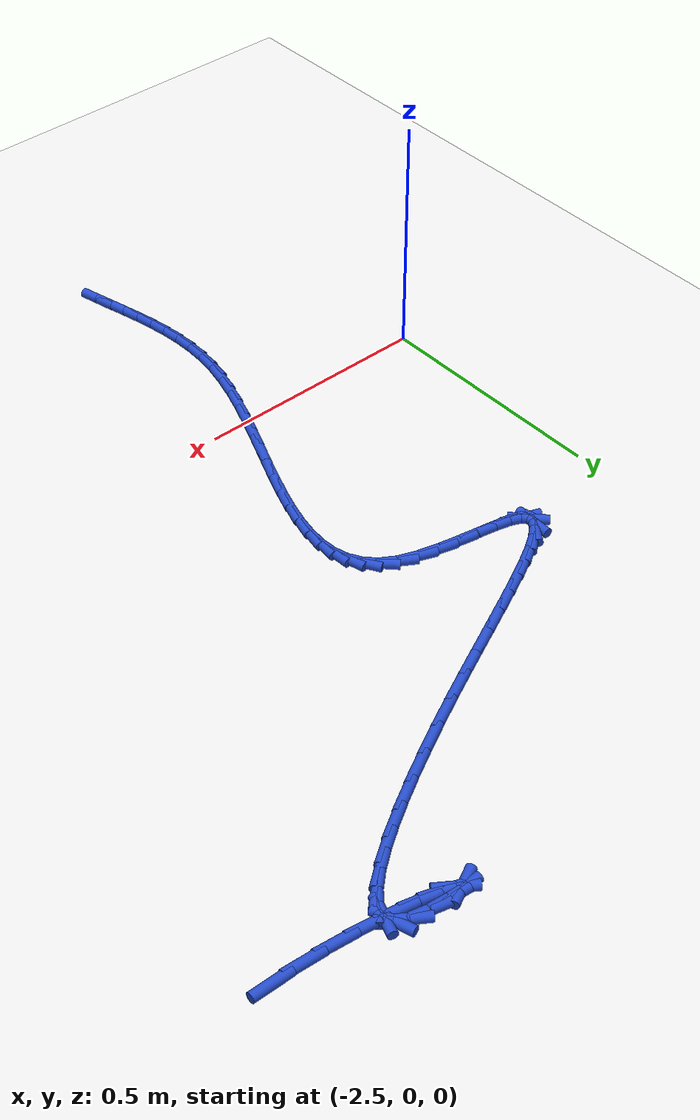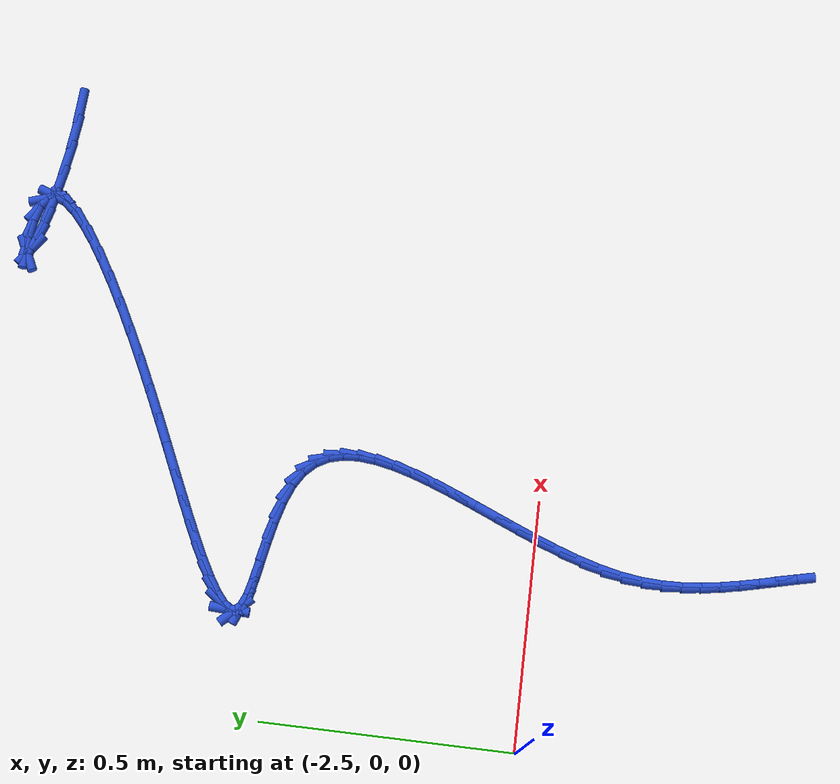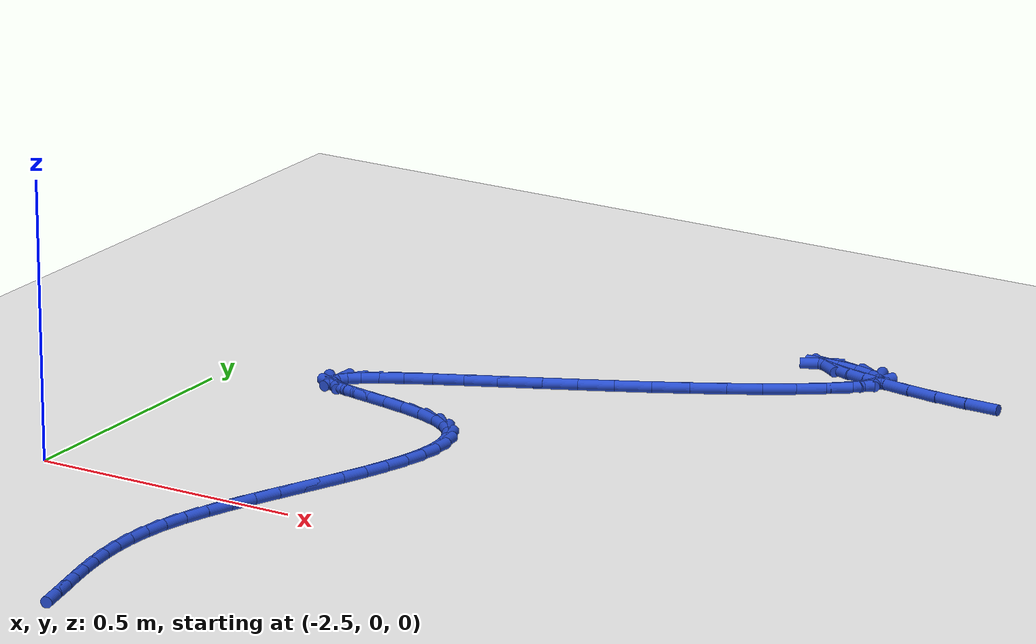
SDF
<sdf version="1.6">
 <world name="default">
  <model name="ground_plane">
   <static>1</static>
   <link name="link">
    <collision name="collision">
     <geometry><plane><normal>0 0 1</normal><size>100 100</size></plane></geometry>
     <surface><friction><ode><mu>100</mu><mu2>50</mu2></ode></friction></surface>
    </collision>
    <visual name="visual">
     <cast_shadows>0</cast_shadows>
     <geometry><plane><normal>0 0 1</normal><size>100 100</size></plane></geometry>
     <material>
      <script><uri>file://media/materials/scripts/gazebo.material</uri><name>Gazebo/WhiteGlow</name></script>
     </material>
    </visual>
   </link>
  </model>
  <model name="line">
   <link name="link_54">
    <pose>-1.2621086770110108 1.0595913020166778 0.01 0 1.57 -0.03310570998613322</pose>
    <collision name="collision">
     <geometry><cylinder><radius>0.01</radius><length>0.08</length></cylinder></geometry>
    </collision>
    <visual name="visual">
     <material>
      <script><name>Gazebo/Blue</name><uri>file://media/materials/scripts/gazebo.material</uri></script>
     </material>
     <geometry><cylinder><radius>0.01</radius><length>0.08</length></cylinder></geometry>
    </visual>
   </link>
   <link name="link_55">
    <pose>-1.3237225197284512 1.0616318175394845 0.01 0 1.57 -0.08320481173974842</pose>
    <collision name="collision">
     <geometry><cylinder><radius>0.01</radius><length>0.08</length></cylinder></geometry>
    </collision>
    <visual name="visual">
     <material>
      <script><name>Gazebo/Blue</name><uri>file://media/materials/scripts/gazebo.material</uri></script>
     </material>
     <geometry><cylinder><radius>0.01</radius><length>0.08</length></cylinder></geometry>
    </visual>
   </link>
   <link name="link_56">
    <pose>-1.3842081927248475 1.0666761626858443 0.01 0 1.57 -0.1258533491783362</pose>
    <collision name="collision">
     <geometry><cylinder><radius>0.01</radius><length>0.08</length></cylinder></geometry>
    </collision>
    <visual name="visual">
     <material>
      <script><name>Gazebo/Blue</name><uri>file://media/materials/scripts/gazebo.material</uri></script>
     </material>
     <geometry><cylinder><radius>0.01</radius><length>0.08</length></cylinder></geometry>
    </visual>
   </link>
   <link name="link_57">
    <pose>-1.4414329532460368 1.0739163568484489 0.01 0 1.57 -0.16495241027521698</pose>
    <collision name="collision">
     <geometry><cylinder><radius>0.01</radius><length>0.08</length></cylinder></geometry>
    </collision>
    <visual name="visual">
     <material>
      <script><name>Gazebo/Blue</name><uri>file://media/materials/scripts/gazebo.material</uri></script>
     </material>
     <geometry><cylinder><radius>0.01</radius><length>0.08</length></cylinder></geometry>
    </visual>
   </link>
   <link name="link_58">
    <pose>-1.4932640585378585 1.0825444194199902 0.01 0 1.57 -0.20491517443810128</pose>
    <collision name="collision">
     <geometry><cylinder><radius>0.01</radius><length>0.08</length></cylinder></geometry>
    </collision>
    <visual name="visual">
     <material>
      <script><name>Gazebo/Blue</name><uri>file://media/materials/scripts/gazebo.material</uri></script>
     </material>
     <geometry><cylinder><radius>0.01</radius><length>0.08</length></cylinder></geometry>
    </visual>
   </link>
   <link name="link_59">
    <pose>-1.5375687658461508 1.0917523697931601 0.01 0 1.57 -0.2536111768307435</pose>
    <collision name="collision">
     <geometry><cylinder><radius>0.01</radius><length>0.08</length></cylinder></geometry>
    </collision>
    <visual name="visual">
     <material>
      <script><name>Gazebo/Blue</name><uri>file://media/materials/scripts/gazebo.material</uri></script>
     </material>
     <geometry><cylinder><radius>0.01</radius><length>0.08</length></cylinder></geometry>
    </visual>
   </link>
   <link name="link_60">
    <pose>-1.5722143324167532 1.1007322273606517 0.01 0 1.57 -0.33452904336762457</pose>
    <collision name="collision">
     <geometry><cylinder><radius>0.01</radius><length>0.08</length></cylinder></geometry>
    </collision>
    <visual name="visual">
     <material>
      <script><name>Gazebo/Blue</name><uri>file://media/materials/scripts/gazebo.material</uri></script>
     </material>
     <geometry><cylinder><radius>0.01</radius><length>0.08</length></cylinder></geometry>
    </visual>
   </link>
   <link name="link_61">
    <pose>-1.5950680154955037 1.1086760115151562 0.01 0 1.57 -0.5993156591058151</pose>
    <collision name="collision">
     <geometry><cylinder><radius>0.01</radius><length>0.08</length></cylinder></geometry>
    </collision>
    <visual name="visual">
     <material>
      <script><name>Gazebo/Blue</name><uri>file://media/materials/scripts/gazebo.material</uri></script>
     </material>
     <geometry><cylinder><radius>0.01</radius><length>0.08</length></cylinder></geometry>
    </visual>
   </link>
   <link name="link_62">
    <pose>-1.6039970723282413 1.114775741649366 0.01 0 1.57 0.45049219160449977</pose>
    <collision name="collision">
     <geometry><cylinder><radius>0.01</radius><length>0.08</length></cylinder></geometry>
    </collision>
    <visual name="visual">
     <material>
      <script><name>Gazebo/Blue</name><uri>file://media/materials/scripts/gazebo.material</uri></script>
     </material>
     <geometry><cylinder><radius>0.01</radius><length>0.08</length></cylinder></geometry>
    </visual>
   </link>
   <link name="link_63">
    <pose>-1.596868760160805 1.1182234371559736 0.01 0 1.57 -0.00045436109669818274</pose>
    <collision name="collision">
     <geometry><cylinder><radius>0.01</radius><length>0.08</length></cylinder></geometry>
    </collision>
    <visual name="visual">
     <material>
      <script><name>Gazebo/Blue</name><uri>file://media/materials/scripts/gazebo.material</uri></script>
     </material>
     <geometry><cylinder><radius>0.01</radius><length>0.08</length></cylinder></geometry>
    </visual>
   </link>
   <link name="link_64">
    <pose>-1.5715867153292318 1.1182119499775667 0.01 0 1.57 -0.10538714081509594</pose>
    <collision name="collision">
     <geometry><cylinder><radius>0.01</radius><length>0.08</length></cylinder></geometry>
    </collision>
    <visual name="visual">
     <material>
      <script><name>Gazebo/Blue</name><uri>file://media/materials/scripts/gazebo.material</uri></script>
     </material>
     <geometry><cylinder><radius>0.01</radius><length>0.08</length></cylinder></geometry>
    </visual>
   </link>
   <link name="link_65">
    <pose>-1.5325511916757233 1.1140828097229545 0.01 0 1.57 -0.24223994316319153</pose>
    <collision name="collision">
     <geometry><cylinder><radius>0.01</radius><length>0.08</length></cylinder></geometry>
    </collision>
    <visual name="visual">
     <material>
      <script><name>Gazebo/Blue</name><uri>file://media/materials/scripts/gazebo.material</uri></script>
     </material>
     <geometry><cylinder><radius>0.01</radius><length>0.08</length></cylinder></geometry>
    </visual>
   </link>
   <link name="link_66">
    <pose>-1.4978407646117895 1.1055061376246496 0.01 0 1.57 -0.5826988297386786</pose>
    <collision name="collision">
     <geometry><cylinder><radius>0.01</radius><length>0.08</length></cylinder></geometry>
    </collision>
    <visual name="visual">
     <material>
      <script><name>Gazebo/Blue</name><uri>file://media/materials/scripts/gazebo.material</uri></script>
     </material>
     <geometry><cylinder><radius>0.01</radius><length>0.08</length></cylinder></geometry>
    </visual>
   </link>
   <link name="link_67">
    <pose>-1.4781532363193755 1.0925314150318177 0.01 0 1.57 -1.2628715336598104</pose>
    <collision name="collision">
     <geometry><cylinder><radius>0.01</radius><length>0.08</length></cylinder></geometry>
    </collision>
    <visual name="visual">
     <material>
      <script><name>Gazebo/Blue</name><uri>file://media/materials/scripts/gazebo.material</uri></script>
     </material>
     <geometry><cylinder><radius>0.01</radius><length>0.08</length></cylinder></geometry>
    </visual>
   </link>
   <link name="link_68">
    <pose>-1.4727773109878248 1.0756281623570447 0.01 0 1.57 1.2169457573293934</pose>
    <collision name="collision">
     <geometry><cylinder><radius>0.01</radius><length>0.08</length></cylinder></geometry>
    </collision>
    <visual name="visual">
     <material>
      <script><name>Gazebo/Blue</name><uri>file://media/materials/scripts/gazebo.material</uri></script>
     </material>
     <geometry><cylinder><radius>0.01</radius><length>0.08</length></cylinder></geometry>
    </visual>
   </link>
   <link name="link_69">
    <pose>-1.480289409153508 1.0552921235547483 0.01 0 1.57 0.8867438918955234</pose>
    <collision name="collision">
     <geometry><cylinder><radius>0.01</radius><length>0.08</length></cylinder></geometry>
    </collision>
    <visual name="visual">
     <material>
      <script><name>Gazebo/Blue</name><uri>file://media/materials/scripts/gazebo.material</uri></script>
     </material>
     <geometry><cylinder><radius>0.01</radius><length>0.08</length></cylinder></geometry>
    </visual>
   </link>
   <link name="link_70">
    <pose>-1.4992659513527973 1.0320190425793483 0.01 0 1.57 0.7251219211130178</pose>
    <collision name="collision">
     <geometry><cylinder><radius>0.01</radius><length>0.08</length></cylinder></geometry>
    </collision>
    <visual name="visual">
     <material>
      <script><name>Gazebo/Blue</name><uri>file://media/materials/scripts/gazebo.material</uri></script>
     </material>
     <geometry><cylinder><radius>0.01</radius><length>0.08</length></cylinder></geometry>
    </visual>
   </link>
   <link name="link_71">
    <pose>-1.5282833581220614 1.0063046633852615 0.01 0 1.57 0.6338047884958683</pose>
    <collision name="collision">
     <geometry><cylinder><radius>0.01</radius><length>0.08</length></cylinder></geometry>
    </collision>
    <visual name="visual">
     <material>
      <script><name>Gazebo/Blue</name><uri>file://media/materials/scripts/gazebo.material</uri></script>
     </material>
     <geometry><cylinder><radius>0.01</radius><length>0.08</length></cylinder></geometry>
    </visual>
   </link>
   <link name="link_72">
    <pose>-1.5659180499976721 0.9786447299269071 0.01 0 1.57 0.5759247933292906</pose>
    <collision name="collision">
     <geometry><cylinder><radius>0.01</radius><length>0.08</length></cylinder></geometry>
    </collision>
    <visual name="visual">
     <material>
      <script><name>Gazebo/Blue</name><uri>file://media/materials/scripts/gazebo.material</uri></script>
     </material>
     <geometry><cylinder><radius>0.01</radius><length>0.08</length></cylinder></geometry>
    </visual>
   </link>
   <link name="link_73">
    <pose>-1.6107464475159996 0.9495349861587024 0.01 0 1.57 0.5361171110174496</pose>
    <collision name="collision">
     <geometry><cylinder><radius>0.01</radius><length>0.08</length></cylinder></geometry>
    </collision>
    <visual name="visual">
     <material>
      <script><name>Gazebo/Blue</name><uri>file://media/materials/scripts/gazebo.material</uri></script>
     </material>
     <geometry><cylinder><radius>0.01</radius><length>0.08</length></cylinder></geometry>
    </visual>
   </link>
   <link name="link_74">
    <pose>-1.6613449712134147 0.919471176035067 0.01 0 1.57 0.5070580799081065</pose>
    <collision name="collision">
     <geometry><cylinder><radius>0.01</radius><length>0.08</length></cylinder></geometry>
    </collision>
    <visual name="visual">
     <material>
      <script><name>Gazebo/Blue</name><uri>file://media/materials/scripts/gazebo.material</uri></script>
     </material>
     <geometry><cylinder><radius>0.01</radius><length>0.08</length></cylinder></geometry>
    </visual>
   </link>
   <link name="link_75">
    <pose>-1.716290041626288 0.8889490435104186 0.01 0 1.57 0.4848547123283656</pose>
    <collision name="collision">
     <geometry><cylinder><radius>0.01</radius><length>0.08</length></cylinder></geometry>
    </collision>
    <visual name="visual">
     <material>
      <script><name>Gazebo/Blue</name><uri>file://media/materials/scripts/gazebo.material</uri></script>
     </material>
     <geometry><cylinder><radius>0.01</radius><length>0.08</length></cylinder></geometry>
    </visual>
   </link>
   <link name="link_76">
    <pose>-1.774158079290991 0.8584643325391752 0.01 0 1.57 0.4672502462934384</pose>
    <collision name="collision">
     <geometry><cylinder><radius>0.01</radius><length>0.08</length></cylinder></geometry>
    </collision>
    <visual name="visual">
     <material>
      <script><name>Gazebo/Blue</name><uri>file://media/materials/scripts/gazebo.material</uri></script>
     </material>
     <geometry><cylinder><radius>0.01</radius><length>0.08</length></cylinder></geometry>
    </visual>
   </link>
   <link name="link_77">
    <pose>-1.8335255047438936 0.8285127870757562 0.01 0 1.57 0.4529797296420567</pose>
    <collision name="collision">
     <geometry><cylinder><radius>0.01</radius><length>0.08</length></cylinder></geometry>
    </collision>
    <visual name="visual">
     <material>
      <script><name>Gazebo/Blue</name><uri>file://media/materials/scripts/gazebo.material</uri></script>
     </material>
     <geometry><cylinder><radius>0.01</radius><length>0.08</length></cylinder></geometry>
    </visual>
   </link>
   <link name="link_78">
    <pose>-1.8930017533487251 0.7995635914094978 0.01 0 1.57 0.4426449568052987</pose>
    <collision name="collision">
     <geometry><cylinder><radius>0.01</radius><length>0.08</length></cylinder></geometry>
    </collision>
    <visual name="visual">
     <material>
      <script><name>Gazebo/Blue</name><uri>file://media/materials/scripts/gazebo.material</uri></script>
     </material>
     <geometry><cylinder><radius>0.01</radius><length>0.08</length></cylinder></geometry>
    </visual>
   </link>
   <link name="link_79">
    <pose>-1.9515214133271221 0.7718243518753135 0.01 0 1.57 0.4368961481491594</pose>
    <collision name="collision">
     <geometry><cylinder><radius>0.01</radius><length>0.08</length></cylinder></geometry>
    </collision>
    <visual name="visual">
     <material>
      <script><name>Gazebo/Blue</name><uri>file://media/materials/scripts/gazebo.material</uri></script>
     </material>
     <geometry><cylinder><radius>0.01</radius><length>0.08</length></cylinder></geometry>
    </visual>
   </link>
   <link name="link_80">
    <pose>-2.0082039907340667 0.7453539126877589 0.01 0 1.57 0.43601604499487856</pose>
    <collision name="collision">
     <geometry><cylinder><radius>0.01</radius><length>0.08</length></cylinder></geometry>
    </collision>
    <visual name="visual">
     <material>
      <script><name>Gazebo/Blue</name><uri>file://media/materials/scripts/gazebo.material</uri></script>
     </material>
     <geometry><cylinder><radius>0.01</radius><length>0.08</length></cylinder></geometry>
    </visual>
   </link>
   <link name="link_81">
    <pose>-2.062171127285192 0.720209399971786 0.01 0 1.57 0.4407581861228284</pose>
    <collision name="collision">
     <geometry><cylinder><radius>0.01</radius><length>0.08</length></cylinder></geometry>
    </collision>
    <visual name="visual">
     <material>
      <script><name>Gazebo/Blue</name><uri>file://media/materials/scripts/gazebo.material</uri></script>
     </material>
     <geometry><cylinder><radius>0.01</radius><length>0.08</length></cylinder></geometry>
    </visual>
   </link>
   <link name="link_82">
    <pose>-2.11254446469613 0.6964479398523468 0.01 0 1.57 0.45261951568819364</pose>
    <collision name="collision">
     <geometry><cylinder><radius>0.01</radius><length>0.08</length></cylinder></geometry>
    </collision>
    <visual name="visual">
     <material>
      <script><name>Gazebo/Blue</name><uri>file://media/materials/scripts/gazebo.material</uri></script>
     </material>
     <geometry><cylinder><radius>0.01</radius><length>0.08</length></cylinder></geometry>
    </visual>
   </link>
   <link name="link_83">
    <pose>-2.158445644682515 0.6741266584543946 0.01 0 1.57 0.474412810399847</pose>
    <collision name="collision">
     <geometry><cylinder><radius>0.01</radius><length>0.08</length></cylinder></geometry>
    </collision>
    <visual name="visual">
     <material>
      <script><name>Gazebo/Blue</name><uri>file://media/materials/scripts/gazebo.material</uri></script>
     </material>
     <geometry><cylinder><radius>0.01</radius><length>0.08</length></cylinder></geometry>
    </visual>
   </link>
   <link name="link_84">
    <pose>-2.1989963089599773 0.6533026819028814 0.01 0 1.57 0.5115820928979206</pose>
    <collision name="collision">
     <geometry><cylinder><radius>0.01</radius><length>0.08</length></cylinder></geometry>
    </collision>
    <visual name="visual">
     <material>
      <script><name>Gazebo/Blue</name><uri>file://media/materials/scripts/gazebo.material</uri></script>
     </material>
     <geometry><cylinder><radius>0.01</radius><length>0.08</length></cylinder></geometry>
    </visual>
   </link>
   <link name="link_85">
    <pose>-2.233318099244151 0.6340331363227594 0.01 0 1.57 0.5755617705309598</pose>
    <collision name="collision">
     <geometry><cylinder><radius>0.01</radius><length>0.08</length></cylinder></geometry>
    </collision>
    <visual name="visual">
     <material>
      <script><name>Gazebo/Blue</name><uri>file://media/materials/scripts/gazebo.material</uri></script>
     </material>
     <geometry><cylinder><radius>0.01</radius><length>0.08</length></cylinder></geometry>
    </visual>
   </link>
   <link name="link_86">
    <pose>-2.2605326572506685 0.6163751478389815 0.01 0 1.57 0.6936682105934229</pose>
    <collision name="collision">
     <geometry><cylinder><radius>0.01</radius><length>0.08</length></cylinder></geometry>
    </collision>
    <visual name="visual">
     <material>
      <script><name>Gazebo/Blue</name><uri>file://media/materials/scripts/gazebo.material</uri></script>
     </material>
     <geometry><cylinder><radius>0.01</radius><length>0.08</length></cylinder></geometry>
    </visual>
   </link>
   <link name="link_87">
    <pose>-2.2797616246951615 0.6003858425765 0.01 0 1.57 0.9423868441744991</pose>
    <collision name="collision">
     <geometry><cylinder><radius>0.01</radius><length>0.08</length></cylinder></geometry>
    </collision>
    <visual name="visual">
     <material>
      <script><name>Gazebo/Blue</name><uri>file://media/materials/scripts/gazebo.material</uri></script>
     </material>
     <geometry><cylinder><radius>0.01</radius><length>0.08</length></cylinder></geometry>
    </visual>
   </link>
   <link name="link_88">
    <pose>-2.290126643293265 0.5861223466602673 0.01 0 1.57 1.5209431570071748</pose>
    <collision name="collision">
     <geometry><cylinder><radius>0.01</radius><length>0.08</length></cylinder></geometry>
    </collision>
    <visual name="visual">
     <material>
      <script><name>Gazebo/Blue</name><uri>file://media/materials/scripts/gazebo.material</uri></script>
     </material>
     <geometry><cylinder><radius>0.01</radius><length>0.08</length></cylinder></geometry>
    </visual>
   </link>
   <link name="link_89">
    <pose>-2.2907493547606097 0.5736417862152358 0.01 0 1.57 -0.8165214953865673</pose>
    <collision name="collision">
     <geometry><cylinder><radius>0.01</radius><length>0.08</length></cylinder></geometry>
    </collision>
    <visual name="visual">
     <material>
      <script><name>Gazebo/Blue</name><uri>file://media/materials/scripts/gazebo.material</uri></script>
     </material>
     <geometry><cylinder><radius>0.01</radius><length>0.08</length></cylinder></geometry>
    </visual>
   </link>
   <link name="link_90">
    <pose>-2.2807514008128287 0.5630012873663579 0.01 0 1.57 -0.39126328102824415</pose>
    <collision name="collision">
     <geometry><cylinder><radius>0.01</radius><length>0.08</length></cylinder></geometry>
    </collision>
    <visual name="visual">
     <material>
      <script><name>Gazebo/Blue</name><uri>file://media/materials/scripts/gazebo.material</uri></script>
     </material>
     <geometry><cylinder><radius>0.01</radius><length>0.08</length></cylinder></geometry>
    </visual>
   </link>
   <link name="link_91">
    <pose>-2.2594435639553536 0.5542111139494484 0.01 0 1.57 -0.2355901098909157</pose>
    <collision name="collision">
     <geometry><cylinder><radius>0.01</radius><length>0.08</length></cylinder></geometry>
    </collision>
    <visual name="visual">
     <material>
      <script><name>Gazebo/Blue</name><uri>file://media/materials/scripts/gazebo.material</uri></script>
     </material>
     <geometry><cylinder><radius>0.01</radius><length>0.08</length></cylinder></geometry>
    </visual>
   </link>
   <link name="link_92">
    <pose>-2.2283212202978593 0.5467402660293496 0.01 0 1.57 -0.18275115758788868</pose>
    <collision name="collision">
     <geometry><cylinder><radius>0.01</radius><length>0.08</length></cylinder></geometry>
    </collision>
    <visual name="visual">
     <material>
      <script><name>Gazebo/Blue</name><uri>file://media/materials/scripts/gazebo.material</uri></script>
     </material>
     <geometry><cylinder><radius>0.01</radius><length>0.08</length></cylinder></geometry>
    </visual>
   </link>
   <link name="link_93">
    <pose>-2.1902824626655937 0.5397102008887582 0.01 0 1.57 -0.17595882089147952</pose>
    <collision name="collision">
     <geometry><cylinder><radius>0.01</radius><length>0.08</length></cylinder></geometry>
    </collision>
    <visual name="visual">
     <material>
      <script><name>Gazebo/Blue</name><uri>file://media/materials/scripts/gazebo.material</uri></script>
     </material>
     <geometry><cylinder><radius>0.01</radius><length>0.08</length></cylinder></geometry>
    </visual>
   </link>
   <link name="link_94">
    <pose>-2.1482484633819854 0.5322366575403037 0.01 0 1.57 -0.2013998961068839</pose>
    <collision name="collision">
     <geometry><cylinder><radius>0.01</radius><length>0.08</length></cylinder></geometry>
    </collision>
    <visual name="visual">
     <material>
      <script><name>Gazebo/Blue</name><uri>file://media/materials/scripts/gazebo.material</uri></script>
     </material>
     <geometry><cylinder><radius>0.01</radius><length>0.08</length></cylinder></geometry>
    </visual>
   </link>
   <link name="link_95">
    <pose>-2.10514039477046 0.5234353749966151 0.01 0 1.57 -0.2608367597978506</pose>
    <collision name="collision">
     <geometry><cylinder><radius>0.01</radius><length>0.08</length></cylinder></geometry>
    </collision>
    <visual name="visual">
     <material>
      <script><name>Gazebo/Blue</name><uri>file://media/materials/scripts/gazebo.material</uri></script>
     </material>
     <geometry><cylinder><radius>0.01</radius><length>0.08</length></cylinder></geometry>
    </visual>
   </link>
   <link name="link_96">
    <pose>-2.0638794291544493 0.5124220922703218 0.01 0 1.57 -0.368936588976419</pose>
    <collision name="collision">
     <geometry><cylinder><radius>0.01</radius><length>0.08</length></cylinder></geometry>
    </collision>
    <visual name="visual">
     <material>
      <script><name>Gazebo/Blue</name><uri>file://media/materials/scripts/gazebo.material</uri></script>
     </material>
     <geometry><cylinder><radius>0.01</radius><length>0.08</length></cylinder></geometry>
    </visual>
   </link>
   <link name="link_97">
    <pose>-2.02738673885738 0.4983125483740532 0.01 0 1.57 -0.5541475041922188</pose>
    <collision name="collision">
     <geometry><cylinder><radius>0.01</radius><length>0.08</length></cylinder></geometry>
    </collision>
    <visual name="visual">
     <material>
      <script><name>Gazebo/Blue</name><uri>file://media/materials/scripts/gazebo.material</uri></script>
     </material>
     <geometry><cylinder><radius>0.01</radius><length>0.08</length></cylinder></geometry>
    </visual>
   </link>
   <link name="link_98">
    <pose>-1.9983035779487073 0.480315122445728 0.01 0 1.57 -0.8005488677296165</pose>
    <collision name="collision">
     <geometry><cylinder><radius>0.01</radius><length>0.08</length></cylinder></geometry>
    </collision>
    <visual name="visual">
     <material>
      <script><name>Gazebo/Blue</name><uri>file://media/materials/scripts/gazebo.material</uri></script>
     </material>
     <geometry><cylinder><radius>0.01</radius><length>0.08</length></cylinder></geometry>
    </visual>
   </link>
   <link name="link_99">
    <pose>-1.9770248380075843 0.45838163675209276 0.01 0 1.57 -1.0648889801595527</pose>
    <collision name="collision">
     <geometry><cylinder><radius>0.01</radius><length>0.08</length></cylinder></geometry>
    </collision>
    <visual name="visual">
     <material>
      <script><name>Gazebo/Blue</name><uri>file://media/materials/scripts/gazebo.material</uri></script>
     </material>
     <geometry><cylinder><radius>0.01</radius><length>0.08</length></cylinder></geometry>
    </visual>
   </link>
   <link name="link_100">
    <pose>-1.9628646347166427 0.43282160089554766 0.01 0 1.57 -1.3090786006979642</pose>
    <collision name="collision">
     <geometry><cylinder><radius>0.01</radius><length>0.08</length></cylinder></geometry>
    </collision>
    <visual name="visual">
     <material>
      <script><name>Gazebo/Blue</name><uri>file://media/materials/scripts/gazebo.material</uri></script>
     </material>
     <geometry><cylinder><radius>0.01</radius><length>0.08</length></cylinder></geometry>
    </visual>
   </link>
   <link name="link_101">
    <pose>-1.9551301844388116 0.4039468078374122 0.01 0 1.57 -1.5080925087312016</pose>
    <collision name="collision">
     <geometry><cylinder><radius>0.01</radius><length>0.08</length></cylinder></geometry>
    </collision>
    <visual name="visual">
     <material>
      <script><name>Gazebo/Blue</name><uri>file://media/materials/scripts/gazebo.material</uri></script>
     </material>
     <geometry><cylinder><radius>0.01</radius><length>0.08</length></cylinder></geometry>
    </visual>
   </link>
   <link name="link_102">
    <pose>-1.953128703537015 0.3720690505390066 0.01 0 1.57 1.4831189106805307</pose>
    <collision name="collision">
     <geometry><cylinder><radius>0.01</radius><length>0.08</length></cylinder></geometry>
    </collision>
    <visual name="visual">
     <material>
      <script><name>Gazebo/Blue</name><uri>file://media/materials/scripts/gazebo.material</uri></script>
     </material>
     <geometry><cylinder><radius>0.01</radius><length>0.08</length></cylinder></geometry>
    </visual>
   </link>
   <link name="link_103">
    <pose>-1.9561674083741798 0.3375001219616499 0.01 0 1.57 1.3734932689896855</pose>
    <collision name="collision">
     <geometry><cylinder><radius>0.01</radius><length>0.08</length></cylinder></geometry>
    </collision>
    <visual name="visual">
     <material>
      <script><name>Gazebo/Blue</name><uri>file://media/materials/scripts/gazebo.material</uri></script>
     </material>
     <geometry><cylinder><radius>0.01</radius><length>0.08</length></cylinder></geometry>
    </visual>
   </link>
   <link name="link_104">
    <pose>-1.9635535153132335 0.30055181506666223 0.01 0 1.57 1.2950262191356068</pose>
    <collision name="collision">
     <geometry><cylinder><radius>0.01</radius><length>0.08</length></cylinder></geometry>
    </collision>
    <visual name="visual">
     <material>
      <script><name>Gazebo/Blue</name><uri>file://media/materials/scripts/gazebo.material</uri></script>
     </material>
     <geometry><cylinder><radius>0.01</radius><length>0.08</length></cylinder></geometry>
    </visual>
   </link>
   <link name="link_105">
    <pose>-1.974594240717103 0.2615359228153631 0.01 0 1.57 1.2399789897459297</pose>
    <collision name="collision">
     <geometry><cylinder><radius>0.01</radius><length>0.08</length></cylinder></geometry>
    </collision>
    <visual name="visual">
     <material>
      <script><name>Gazebo/Blue</name><uri>file://media/materials/scripts/gazebo.material</uri></script>
     </material>
     <geometry><cylinder><radius>0.01</radius><length>0.08</length></cylinder></geometry>
    </visual>
   </link>
   <link name="link_106">
    <pose>-1.9885968009487145 0.22076423816907115 0.01 0 1.57 1.2029043791458973</pose>
    <collision name="collision">
     <geometry><cylinder><radius>0.01</radius><length>0.08</length></cylinder></geometry>
    </collision>
    <visual name="visual">
     <material>
      <script><name>Gazebo/Blue</name><uri>file://media/materials/scripts/gazebo.material</uri></script>
     </material>
     <geometry><cylinder><radius>0.01</radius><length>0.08</length></cylinder></geometry>
    </visual>
   </link>
   <link name="link_107">
    <pose>-2.0048684123709943 0.17854855408910805 0.01 0 1.57 1.1802139872728967</pose>
    <collision name="collision">
     <geometry><cylinder><radius>0.01</radius><length>0.08</length></cylinder></geometry>
    </collision>
    <visual name="visual">
     <material>
      <script><name>Gazebo/Blue</name><uri>file://media/materials/scripts/gazebo.material</uri></script>
     </material>
     <geometry><cylinder><radius>0.01</radius><length>0.08</length></cylinder></geometry>
    </visual>
   </link>
   <link name="link_108">
    <pose>-2.0227162913468693 0.13520066353679253 0.01 0 1.57 1.1696961952644565</pose>
    <collision name="collision">
     <geometry><cylinder><radius>0.01</radius><length>0.08</length></cylinder></geometry>
    </collision>
    <visual name="visual">
     <material>
      <script><name>Gazebo/Blue</name><uri>file://media/materials/scripts/gazebo.material</uri></script>
     </material>
     <geometry><cylinder><radius>0.01</radius><length>0.08</length></cylinder></geometry>
    </visual>
   </link>
   <link name="link_109">
    <pose>-2.041447654239266 0.09103235947344424 0.01 0 1.57 1.170170581609105</pose>
    <collision name="collision">
     <geometry><cylinder><radius>0.01</radius><length>0.08</length></cylinder></geometry>
    </collision>
    <visual name="visual">
     <material>
      <script><name>Gazebo/Blue</name><uri>file://media/materials/scripts/gazebo.material</uri></script>
     </material>
     <geometry><cylinder><radius>0.01</radius><length>0.08</length></cylinder></geometry>
    </visual>
   </link>
   <link name="link_110">
    <pose>-2.060369717411111 0.04635543486038288 0.01 0 1.57 1.1812843886547215</pose>
    <collision name="collision">
     <geometry><cylinder><radius>0.01</radius><length>0.08</length></cylinder></geometry>
    </collision>
    <visual name="visual">
     <material>
      <script><name>Gazebo/Blue</name><uri>file://media/materials/scripts/gazebo.material</uri></script>
     </material>
     <geometry><cylinder><radius>0.01</radius><length>0.08</length></cylinder></geometry>
    </visual>
   </link>
   <link name="link_111">
    <pose>-2.078789697225332 0.0014816826589280907 0.01 0 1.57 1.203424087984826</pose>
    <collision name="collision">
     <geometry><cylinder><radius>0.01</radius><length>0.08</length></cylinder></geometry>
    </collision>
    <visual name="visual">
     <material>
      <script><name>Gazebo/Blue</name><uri>file://media/materials/scripts/gazebo.material</uri></script>
     </material>
     <geometry><cylinder><radius>0.01</radius><length>0.08</length></cylinder></geometry>
    </visual>
   </link>
   <link name="link_112">
    <pose>-2.096014810044855 -0.04327710416960141 0.01 0 1.57 1.2377180166658706</pose>
    <collision name="collision">
     <geometry><cylinder><radius>0.01</radius><length>0.08</length></cylinder></geometry>
    </collision>
    <visual name="visual">
     <material>
      <script><name>Gazebo/Blue</name><uri>file://media/materials/scripts/gazebo.material</uri></script>
     </material>
     <geometry><cylinder><radius>0.01</radius><length>0.08</length></cylinder></geometry>
    </visual>
   </link>
   <link name="link_113">
    <pose>-2.1113522722326055 -0.08760913266388393 0.01 0 1.57 1.2861089623710442</pose>
    <collision name="collision">
     <geometry><cylinder><radius>0.01</radius><length>0.08</length></cylinder></geometry>
    </collision>
    <visual name="visual">
     <material>
      <script><name>Gazebo/Blue</name><uri>file://media/materials/scripts/gazebo.material</uri></script>
     </material>
     <geometry><cylinder><radius>0.01</radius><length>0.08</length></cylinder></geometry>
    </visual>
   </link>
   <link name="link_114">
    <pose>-2.124109300151512 -0.1312026098626008 0.01 0 1.57 1.3514604148538316</pose>
    <collision name="collision">
     <geometry><cylinder><radius>0.01</radius><length>0.08</length></cylinder></geometry>
    </collision>
    <visual name="visual">
     <material>
      <script><name>Gazebo/Blue</name><uri>file://media/materials/scripts/gazebo.material</uri></script>
     </material>
     <geometry><cylinder><radius>0.01</radius><length>0.08</length></cylinder></geometry>
    </visual>
   </link>
   <link name="link_115">
    <pose>-2.1335931101644996 -0.1737457428044324 0.01 0 1.57 1.4340092643357916</pose>
    <collision name="collision">
     <geometry><cylinder><radius>0.01</radius><length>0.08</length></cylinder></geometry>
    </collision>
    <visual name="visual">
     <material>
      <script><name>Gazebo/Blue</name><uri>file://media/materials/scripts/gazebo.material</uri></script>
     </material>
     <geometry><cylinder><radius>0.01</radius><length>0.08</length></cylinder></geometry>
    </visual>
   </link>
   <link name="link_116">
    <pose>-2.1392706230131093 -0.21499276147524538 0.01 0 1.57 1.517741447471849</pose>
    <collision name="collision">
     <geometry><cylinder><radius>0.01</radius><length>0.08</length></cylinder></geometry>
    </collision>
    <visual name="visual">
     <material>
      <script><name>Gazebo/Blue</name><uri>file://media/materials/scripts/gazebo.material</uri></script>
     </material>
     <geometry><cylinder><radius>0.01</radius><length>0.08</length></cylinder></geometry>
    </visual>
   </link>
   <link name="link_117">
    <pose>-2.1413964456389616 -0.2550235310428542 0.01 0 1.57 -1.546981221432193</pose>
    <collision name="collision">
     <geometry><cylinder><radius>0.01</radius><length>0.08</length></cylinder></geometry>
    </collision>
    <visual name="visual">
     <material>
      <script><name>Gazebo/Blue</name><uri>file://media/materials/scripts/gazebo.material</uri></script>
     </material>
     <geometry><cylinder><radius>0.01</radius><length>0.08</length></cylinder></geometry>
    </visual>
   </link>
   <link name="link_118">
    <pose>-2.140467609391106 -0.29401813668148336 0.01 0 1.57 -1.4796357181761943</pose>
    <collision name="collision">
     <geometry><cylinder><radius>0.01</radius><length>0.08</length></cylinder></geometry>
    </collision>
    <visual name="visual">
     <material>
      <script><name>Gazebo/Blue</name><uri>file://media/materials/scripts/gazebo.material</uri></script>
     </material>
     <geometry><cylinder><radius>0.01</radius><length>0.08</length></cylinder></geometry>
    </visual>
   </link>
   <link name="link_119">
    <pose>-2.1369812125731995 -0.3321566912448783 0.01 0 1.57 -1.4238004633284922</pose>
    <collision name="collision">
     <geometry><cylinder><radius>0.01</radius><length>0.08</length></cylinder></geometry>
    </collision>
    <visual name="visual">
     <material>
      <script><name>Gazebo/Blue</name><uri>file://media/materials/scripts/gazebo.material</uri></script>
     </material>
     <geometry><cylinder><radius>0.01</radius><length>0.08</length></cylinder></geometry>
    </visual>
   </link>
   <link name="link_120">
    <pose>-2.1314343534889004 -0.3696193075867819 0.01 0 1.57 -1.3807760886948637</pose>
    <collision name="collision">
     <geometry><cylinder><radius>0.01</radius><length>0.08</length></cylinder></geometry>
    </collision>
    <visual name="visual">
     <material>
      <script><name>Gazebo/Blue</name><uri>file://media/materials/scripts/gazebo.material</uri></script>
     </material>
     <geometry><cylinder><radius>0.01</radius><length>0.08</length></cylinder></geometry>
    </visual>
   </link>
   <link name="link_121">
    <pose>-2.1243241304418654 -0.4065860985609397 0.01 0 1.57 -1.35130060194063</pose>
    <collision name="collision">
     <geometry><cylinder><radius>0.01</radius><length>0.08</length></cylinder></geometry>
    </collision>
    <visual name="visual">
     <material>
      <script><name>Gazebo/Blue</name><uri>file://media/materials/scripts/gazebo.material</uri></script>
     </material>
     <geometry><cylinder><radius>0.01</radius><length>0.08</length></cylinder></geometry>
    </visual>
   </link>
   <link name="link_122">
    <pose>-2.1161476417357523 -0.44323717702109594 0.01 0 1.57 -1.3357190169991249</pose>
    <collision name="collision">
     <geometry><cylinder><radius>0.01</radius><length>0.08</length></cylinder></geometry>
    </collision>
    <visual name="visual">
     <material>
      <script><name>Gazebo/Blue</name><uri>file://media/materials/scripts/gazebo.material</uri></script>
     </material>
     <geometry><cylinder><radius>0.01</radius><length>0.08</length></cylinder></geometry>
    </visual>
   </link>
   <link name="link_123">
    <pose>-2.107401985674218 -0.4797526558209956 0.01 0 1.57 -1.3341310973110874</pose>
    <collision name="collision">
     <geometry><cylinder><radius>0.01</radius><length>0.08</length></cylinder></geometry>
    </collision>
    <visual name="visual">
     <material>
      <script><name>Gazebo/Blue</name><uri>file://media/materials/scripts/gazebo.material</uri></script>
     </material>
     <geometry><cylinder><radius>0.01</radius><length>0.08</length></cylinder></geometry>
    </visual>
   </link>
   <link name="link_124">
    <pose>-2.0985842605609206 -0.5163126478143831 0.01 0 1.57 -1.3464783282391628</pose>
    <collision name="collision">
     <geometry><cylinder><radius>0.01</radius><length>0.08</length></cylinder></geometry>
    </collision>
    <visual name="visual">
     <material>
      <script><name>Gazebo/Blue</name><uri>file://media/materials/scripts/gazebo.material</uri></script>
     </material>
     <geometry><cylinder><radius>0.01</radius><length>0.08</length></cylinder></geometry>
    </visual>
   </link>
  </model>
 </world>
</sdf>
